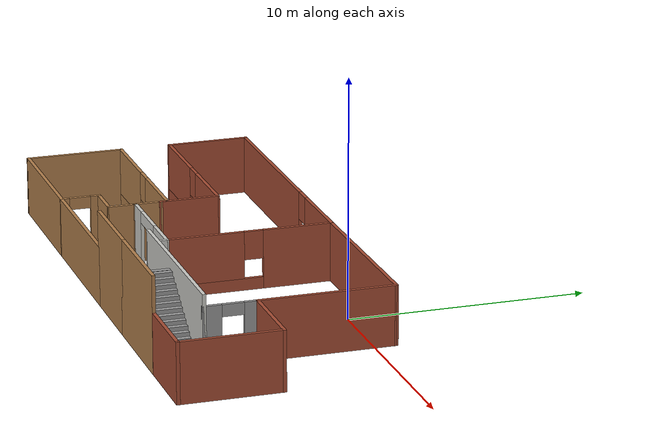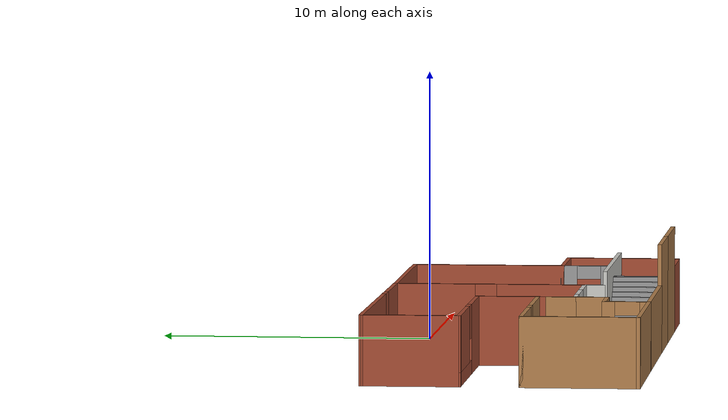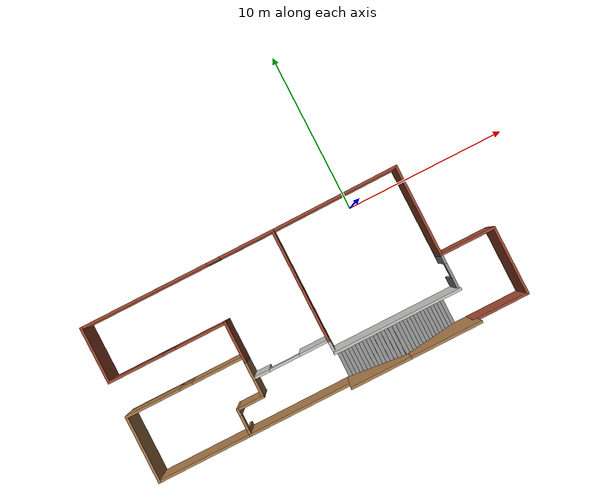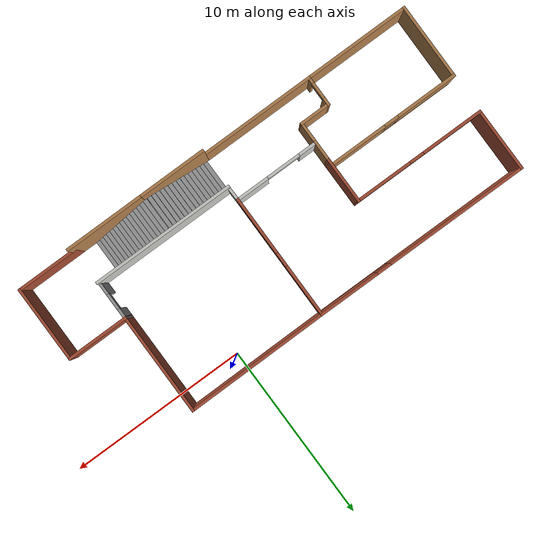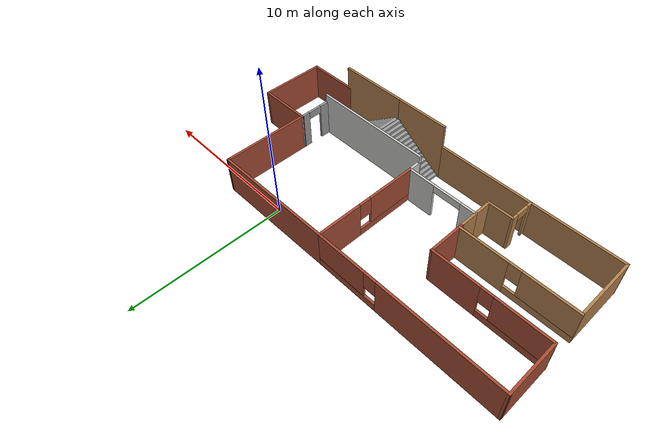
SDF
<?xml version='1.0'?>
<sdf version='1.7'>
  <model name='robot_house_space'>
    <pose>-5.05169 -4.00824 0 0 -0 0</pose>
    <link name='Stairs_1'>
      <visual name='Stairs_1_Visual_0'>
        <pose>0.620829 -3.92142 0.083333 0 -0 1.5708</pose>
        <geometry>
          <box>
            <size>1.97481 0.231333 0.166667</size>
          </box>
        </geometry>
        <material>
          <script>
            <uri>file://media/materials/scripts/gazebo.material</uri>
            <name>Gazebo/Grey</name>
          </script>
          <ambient>1 1 1 1</ambient>
        </material>
        <meta>
          <layer>0</layer>
        </meta>
      </visual>
      <collision name='Stairs_1_Collision_0'>
        <geometry>
          <box>
            <size>1.97481 0.231333 0.166667</size>
          </box>
        </geometry>
        <pose>0.620829 -3.92142 0.083333 0 -0 1.5708</pose>
      </collision>
      <visual name='Stairs_1_Visual_1'>
        <pose>0.852162 -3.92142 0.25 0 -0 1.5708</pose>
        <geometry>
          <box>
            <size>1.97481 0.231333 0.166667</size>
          </box>
        </geometry>
        <material>
          <script>
            <uri>file://media/materials/scripts/gazebo.material</uri>
            <name>Gazebo/Grey</name>
          </script>
          <ambient>1 1 1 1</ambient>
        </material>
        <meta>
          <layer>0</layer>
        </meta>
      </visual>
      <collision name='Stairs_1_Collision_1'>
        <geometry>
          <box>
            <size>1.97481 0.231333 0.166667</size>
          </box>
        </geometry>
        <pose>0.852162 -3.92142 0.25 0 -0 1.5708</pose>
      </collision>
      <visual name='Stairs_1_Visual_2'>
        <pose>1.0835 -3.92142 0.416667 0 -0 1.5708</pose>
        <geometry>
          <box>
            <size>1.97481 0.231333 0.166667</size>
          </box>
        </geometry>
        <material>
          <script>
            <uri>file://media/materials/scripts/gazebo.material</uri>
            <name>Gazebo/Grey</name>
          </script>
          <ambient>1 1 1 1</ambient>
        </material>
        <meta>
          <layer>0</layer>
        </meta>
      </visual>
      <collision name='Stairs_1_Collision_2'>
        <geometry>
          <box>
            <size>1.97481 0.231333 0.166667</size>
          </box>
        </geometry>
        <pose>1.0835 -3.92142 0.416667 0 -0 1.5708</pose>
      </collision>
      <visual name='Stairs_1_Visual_3'>
        <pose>1.31483 -3.92142 0.583333 0 -0 1.5708</pose>
        <geometry>
          <box>
            <size>1.97481 0.231333 0.166667</size>
          </box>
        </geometry>
        <material>
          <script>
            <uri>file://media/materials/scripts/gazebo.material</uri>
            <name>Gazebo/Grey</name>
          </script>
          <ambient>1 1 1 1</ambient>
        </material>
        <meta>
          <layer>0</layer>
        </meta>
      </visual>
      <collision name='Stairs_1_Collision_3'>
        <geometry>
          <box>
            <size>1.97481 0.231333 0.166667</size>
          </box>
        </geometry>
        <pose>1.31483 -3.92142 0.583333 0 -0 1.5708</pose>
      </collision>
      <visual name='Stairs_1_Visual_4'>
        <pose>1.54616 -3.92142 0.75 0 -0 1.5708</pose>
        <geometry>
          <box>
            <size>1.97481 0.231333 0.166667</size>
          </box>
        </geometry>
        <material>
          <script>
            <uri>file://media/materials/scripts/gazebo.material</uri>
            <name>Gazebo/Grey</name>
          </script>
          <ambient>1 1 1 1</ambient>
        </material>
        <meta>
          <layer>0</layer>
        </meta>
      </visual>
      <collision name='Stairs_1_Collision_4'>
        <geometry>
          <box>
            <size>1.97481 0.231333 0.166667</size>
          </box>
        </geometry>
        <pose>1.54616 -3.92142 0.75 0 -0 1.5708</pose>
      </collision>
      <visual name='Stairs_1_Visual_5'>
        <pose>1.7775 -3.92142 0.916667 0 -0 1.5708</pose>
        <geometry>
          <box>
            <size>1.97481 0.231333 0.166667</size>
          </box>
        </geometry>
        <material>
          <script>
            <uri>file://media/materials/scripts/gazebo.material</uri>
            <name>Gazebo/Grey</name>
          </script>
          <ambient>1 1 1 1</ambient>
        </material>
        <meta>
          <layer>0</layer>
        </meta>
      </visual>
      <collision name='Stairs_1_Collision_5'>
        <geometry>
          <box>
            <size>1.97481 0.231333 0.166667</size>
          </box>
        </geometry>
        <pose>1.7775 -3.92142 0.916667 0 -0 1.5708</pose>
      </collision>
      <visual name='Stairs_1_Visual_6'>
        <pose>2.00883 -3.92142 1.08333 0 -0 1.5708</pose>
        <geometry>
          <box>
            <size>1.97481 0.231333 0.166667</size>
          </box>
        </geometry>
        <material>
          <script>
            <uri>file://media/materials/scripts/gazebo.material</uri>
            <name>Gazebo/Grey</name>
          </script>
          <ambient>1 1 1 1</ambient>
        </material>
        <meta>
          <layer>0</layer>
        </meta>
      </visual>
      <collision name='Stairs_1_Collision_6'>
        <geometry>
          <box>
            <size>1.97481 0.231333 0.166667</size>
          </box>
        </geometry>
        <pose>2.00883 -3.92142 1.08333 0 -0 1.5708</pose>
      </collision>
      <visual name='Stairs_1_Visual_7'>
        <pose>2.24016 -3.92142 1.25 0 -0 1.5708</pose>
        <geometry>
          <box>
            <size>1.97481 0.231333 0.166667</size>
          </box>
        </geometry>
        <material>
          <script>
            <uri>file://media/materials/scripts/gazebo.material</uri>
            <name>Gazebo/Grey</name>
          </script>
          <ambient>1 1 1 1</ambient>
        </material>
        <meta>
          <layer>0</layer>
        </meta>
      </visual>
      <collision name='Stairs_1_Collision_7'>
        <geometry>
          <box>
            <size>1.97481 0.231333 0.166667</size>
          </box>
        </geometry>
        <pose>2.24016 -3.92142 1.25 0 -0 1.5708</pose>
      </collision>
      <visual name='Stairs_1_Visual_8'>
        <pose>2.4715 -3.92142 1.41667 0 -0 1.5708</pose>
        <geometry>
          <box>
            <size>1.97481 0.231333 0.166667</size>
          </box>
        </geometry>
        <material>
          <script>
            <uri>file://media/materials/scripts/gazebo.material</uri>
            <name>Gazebo/Grey</name>
          </script>
          <ambient>1 1 1 1</ambient>
        </material>
        <meta>
          <layer>0</layer>
        </meta>
      </visual>
      <collision name='Stairs_1_Collision_8'>
        <geometry>
          <box>
            <size>1.97481 0.231333 0.166667</size>
          </box>
        </geometry>
        <pose>2.4715 -3.92142 1.41667 0 -0 1.5708</pose>
      </collision>
      <visual name='Stairs_1_Visual_9'>
        <pose>2.70283 -3.92142 1.58333 0 -0 1.5708</pose>
        <geometry>
          <box>
            <size>1.97481 0.231333 0.166667</size>
          </box>
        </geometry>
        <material>
          <script>
            <uri>file://media/materials/scripts/gazebo.material</uri>
            <name>Gazebo/Grey</name>
          </script>
          <ambient>1 1 1 1</ambient>
        </material>
        <meta>
          <layer>0</layer>
        </meta>
      </visual>
      <collision name='Stairs_1_Collision_9'>
        <geometry>
          <box>
            <size>1.97481 0.231333 0.166667</size>
          </box>
        </geometry>
        <pose>2.70283 -3.92142 1.58333 0 -0 1.5708</pose>
      </collision>
      <visual name='Stairs_1_Visual_10'>
        <pose>2.93416 -3.92142 1.75 0 -0 1.5708</pose>
        <geometry>
          <box>
            <size>1.97481 0.231333 0.166667</size>
          </box>
        </geometry>
        <material>
          <script>
            <uri>file://media/materials/scripts/gazebo.material</uri>
            <name>Gazebo/Grey</name>
          </script>
          <ambient>1 1 1 1</ambient>
        </material>
        <meta>
          <layer>0</layer>
        </meta>
      </visual>
      <collision name='Stairs_1_Collision_10'>
        <geometry>
          <box>
            <size>1.97481 0.231333 0.166667</size>
          </box>
        </geometry>
        <pose>2.93416 -3.92142 1.75 0 -0 1.5708</pose>
      </collision>
      <visual name='Stairs_1_Visual_11'>
        <pose>3.1655 -3.92142 1.91667 0 -0 1.5708</pose>
        <geometry>
          <box>
            <size>1.97481 0.231333 0.166667</size>
          </box>
        </geometry>
        <material>
          <script>
            <uri>file://media/materials/scripts/gazebo.material</uri>
            <name>Gazebo/Grey</name>
          </script>
          <ambient>1 1 1 1</ambient>
        </material>
        <meta>
          <layer>0</layer>
        </meta>
      </visual>
      <collision name='Stairs_1_Collision_11'>
        <geometry>
          <box>
            <size>1.97481 0.231333 0.166667</size>
          </box>
        </geometry>
        <pose>3.1655 -3.92142 1.91667 0 -0 1.5708</pose>
      </collision>
      <visual name='Stairs_1_Visual_12'>
        <pose>3.39683 -3.92142 2.08333 0 -0 1.5708</pose>
        <geometry>
          <box>
            <size>1.97481 0.231333 0.166667</size>
          </box>
        </geometry>
        <material>
          <script>
            <uri>file://media/materials/scripts/gazebo.material</uri>
            <name>Gazebo/Grey</name>
          </script>
          <ambient>1 1 1 1</ambient>
        </material>
        <meta>
          <layer>0</layer>
        </meta>
      </visual>
      <collision name='Stairs_1_Collision_12'>
        <geometry>
          <box>
            <size>1.97481 0.231333 0.166667</size>
          </box>
        </geometry>
        <pose>3.39683 -3.92142 2.08333 0 -0 1.5708</pose>
      </collision>
      <visual name='Stairs_1_Visual_13'>
        <pose>3.62816 -3.92142 2.25 0 -0 1.5708</pose>
        <geometry>
          <box>
            <size>1.97481 0.231333 0.166667</size>
          </box>
        </geometry>
        <material>
          <script>
            <uri>file://media/materials/scripts/gazebo.material</uri>
            <name>Gazebo/Grey</name>
          </script>
          <ambient>1 1 1 1</ambient>
        </material>
        <meta>
          <layer>0</layer>
        </meta>
      </visual>
      <collision name='Stairs_1_Collision_13'>
        <geometry>
          <box>
            <size>1.97481 0.231333 0.166667</size>
          </box>
        </geometry>
        <pose>3.62816 -3.92142 2.25 0 -0 1.5708</pose>
      </collision>
      <visual name='Stairs_1_Visual_14'>
        <pose>3.8595 -3.92142 2.41667 0 -0 1.5708</pose>
        <geometry>
          <box>
            <size>1.97481 0.231333 0.166667</size>
          </box>
        </geometry>
        <material>
          <script>
            <uri>file://media/materials/scripts/gazebo.material</uri>
            <name>Gazebo/Grey</name>
          </script>
          <ambient>1 1 1 1</ambient>
        </material>
        <meta>
          <layer>0</layer>
        </meta>
      </visual>
      <collision name='Stairs_1_Collision_14'>
        <geometry>
          <box>
            <size>1.97481 0.231333 0.166667</size>
          </box>
        </geometry>
        <pose>3.8595 -3.92142 2.41667 0 -0 1.5708</pose>
      </collision>
    </link>
    <link name='Stairs_2'>
      <visual name='Stairs_2_Visual_0'>
        <pose>7.38463 -3.89067 0.083333 0 -0 -1.5708</pose>
        <geometry>
          <box>
            <size>1.8856 0.233333 0.166667</size>
          </box>
        </geometry>
        <material>
          <script>
            <uri>file://media/materials/scripts/gazebo.material</uri>
            <name>Gazebo/Grey</name>
          </script>
          <ambient>1 1 1 1</ambient>
        </material>
        <meta>
          <layer>0</layer>
        </meta>
      </visual>
      <collision name='Stairs_2_Collision_0'>
        <geometry>
          <box>
            <size>1.8856 0.233333 0.166667</size>
          </box>
        </geometry>
        <pose>7.38463 -3.89067 0.083333 0 -0 -1.5708</pose>
      </collision>
      <visual name='Stairs_2_Visual_1'>
        <pose>7.15129 -3.89067 0.25 0 -0 -1.5708</pose>
        <geometry>
          <box>
            <size>1.8856 0.233333 0.166667</size>
          </box>
        </geometry>
        <material>
          <script>
            <uri>file://media/materials/scripts/gazebo.material</uri>
            <name>Gazebo/Grey</name>
          </script>
          <ambient>1 1 1 1</ambient>
        </material>
        <meta>
          <layer>0</layer>
        </meta>
      </visual>
      <collision name='Stairs_2_Collision_1'>
        <geometry>
          <box>
            <size>1.8856 0.233333 0.166667</size>
          </box>
        </geometry>
        <pose>7.15129 -3.89067 0.25 0 -0 -1.5708</pose>
      </collision>
      <visual name='Stairs_2_Visual_2'>
        <pose>6.91796 -3.89067 0.416667 0 -0 -1.5708</pose>
        <geometry>
          <box>
            <size>1.8856 0.233333 0.166667</size>
          </box>
        </geometry>
        <material>
          <script>
            <uri>file://media/materials/scripts/gazebo.material</uri>
            <name>Gazebo/Grey</name>
          </script>
          <ambient>1 1 1 1</ambient>
        </material>
        <meta>
          <layer>0</layer>
        </meta>
      </visual>
      <collision name='Stairs_2_Collision_2'>
        <geometry>
          <box>
            <size>1.8856 0.233333 0.166667</size>
          </box>
        </geometry>
        <pose>6.91796 -3.89067 0.416667 0 -0 -1.5708</pose>
      </collision>
      <visual name='Stairs_2_Visual_3'>
        <pose>6.68463 -3.89067 0.583333 0 -0 -1.5708</pose>
        <geometry>
          <box>
            <size>1.8856 0.233333 0.166667</size>
          </box>
        </geometry>
        <material>
          <script>
            <uri>file://media/materials/scripts/gazebo.material</uri>
            <name>Gazebo/Grey</name>
          </script>
          <ambient>1 1 1 1</ambient>
        </material>
        <meta>
          <layer>0</layer>
        </meta>
      </visual>
      <collision name='Stairs_2_Collision_3'>
        <geometry>
          <box>
            <size>1.8856 0.233333 0.166667</size>
          </box>
        </geometry>
        <pose>6.68463 -3.89067 0.583333 0 -0 -1.5708</pose>
      </collision>
      <visual name='Stairs_2_Visual_4'>
        <pose>6.45129 -3.89067 0.75 0 -0 -1.5708</pose>
        <geometry>
          <box>
            <size>1.8856 0.233333 0.166667</size>
          </box>
        </geometry>
        <material>
          <script>
            <uri>file://media/materials/scripts/gazebo.material</uri>
            <name>Gazebo/Grey</name>
          </script>
          <ambient>1 1 1 1</ambient>
        </material>
        <meta>
          <layer>0</layer>
        </meta>
      </visual>
      <collision name='Stairs_2_Collision_4'>
        <geometry>
          <box>
            <size>1.8856 0.233333 0.166667</size>
          </box>
        </geometry>
        <pose>6.45129 -3.89067 0.75 0 -0 -1.5708</pose>
      </collision>
      <visual name='Stairs_2_Visual_5'>
        <pose>6.21796 -3.89067 0.916667 0 -0 -1.5708</pose>
        <geometry>
          <box>
            <size>1.8856 0.233333 0.166667</size>
          </box>
        </geometry>
        <material>
          <script>
            <uri>file://media/materials/scripts/gazebo.material</uri>
            <name>Gazebo/Grey</name>
          </script>
          <ambient>1 1 1 1</ambient>
        </material>
        <meta>
          <layer>0</layer>
        </meta>
      </visual>
      <collision name='Stairs_2_Collision_5'>
        <geometry>
          <box>
            <size>1.8856 0.233333 0.166667</size>
          </box>
        </geometry>
        <pose>6.21796 -3.89067 0.916667 0 -0 -1.5708</pose>
      </collision>
      <visual name='Stairs_2_Visual_6'>
        <pose>5.98463 -3.89067 1.08333 0 -0 -1.5708</pose>
        <geometry>
          <box>
            <size>1.8856 0.233333 0.166667</size>
          </box>
        </geometry>
        <material>
          <script>
            <uri>file://media/materials/scripts/gazebo.material</uri>
            <name>Gazebo/Grey</name>
          </script>
          <ambient>1 1 1 1</ambient>
        </material>
        <meta>
          <layer>0</layer>
        </meta>
      </visual>
      <collision name='Stairs_2_Collision_6'>
        <geometry>
          <box>
            <size>1.8856 0.233333 0.166667</size>
          </box>
        </geometry>
        <pose>5.98463 -3.89067 1.08333 0 -0 -1.5708</pose>
      </collision>
      <visual name='Stairs_2_Visual_7'>
        <pose>5.75129 -3.89067 1.25 0 -0 -1.5708</pose>
        <geometry>
          <box>
            <size>1.8856 0.233333 0.166667</size>
          </box>
        </geometry>
        <material>
          <script>
            <uri>file://media/materials/scripts/gazebo.material</uri>
            <name>Gazebo/Grey</name>
          </script>
          <ambient>1 1 1 1</ambient>
        </material>
        <meta>
          <layer>0</layer>
        </meta>
      </visual>
      <collision name='Stairs_2_Collision_7'>
        <geometry>
          <box>
            <size>1.8856 0.233333 0.166667</size>
          </box>
        </geometry>
        <pose>5.75129 -3.89067 1.25 0 -0 -1.5708</pose>
      </collision>
      <visual name='Stairs_2_Visual_8'>
        <pose>5.51796 -3.89067 1.41667 0 -0 -1.5708</pose>
        <geometry>
          <box>
            <size>1.8856 0.233333 0.166667</size>
          </box>
        </geometry>
        <material>
          <script>
            <uri>file://media/materials/scripts/gazebo.material</uri>
            <name>Gazebo/Grey</name>
          </script>
          <ambient>1 1 1 1</ambient>
        </material>
        <meta>
          <layer>0</layer>
        </meta>
      </visual>
      <collision name='Stairs_2_Collision_8'>
        <geometry>
          <box>
            <size>1.8856 0.233333 0.166667</size>
          </box>
        </geometry>
        <pose>5.51796 -3.89067 1.41667 0 -0 -1.5708</pose>
      </collision>
      <visual name='Stairs_2_Visual_9'>
        <pose>5.28463 -3.89067 1.58333 0 -0 -1.5708</pose>
        <geometry>
          <box>
            <size>1.8856 0.233333 0.166667</size>
          </box>
        </geometry>
        <material>
          <script>
            <uri>file://media/materials/scripts/gazebo.material</uri>
            <name>Gazebo/Grey</name>
          </script>
          <ambient>1 1 1 1</ambient>
        </material>
        <meta>
          <layer>0</layer>
        </meta>
      </visual>
      <collision name='Stairs_2_Collision_9'>
        <geometry>
          <box>
            <size>1.8856 0.233333 0.166667</size>
          </box>
        </geometry>
        <pose>5.28463 -3.89067 1.58333 0 -0 -1.5708</pose>
      </collision>
      <visual name='Stairs_2_Visual_10'>
        <pose>5.05129 -3.89067 1.75 0 -0 -1.5708</pose>
        <geometry>
          <box>
            <size>1.8856 0.233333 0.166667</size>
          </box>
        </geometry>
        <material>
          <script>
            <uri>file://media/materials/scripts/gazebo.material</uri>
            <name>Gazebo/Grey</name>
          </script>
          <ambient>1 1 1 1</ambient>
        </material>
        <meta>
          <layer>0</layer>
        </meta>
      </visual>
      <collision name='Stairs_2_Collision_10'>
        <geometry>
          <box>
            <size>1.8856 0.233333 0.166667</size>
          </box>
        </geometry>
        <pose>5.05129 -3.89067 1.75 0 -0 -1.5708</pose>
      </collision>
      <visual name='Stairs_2_Visual_11'>
        <pose>4.81796 -3.89067 1.91667 0 -0 -1.5708</pose>
        <geometry>
          <box>
            <size>1.8856 0.233333 0.166667</size>
          </box>
        </geometry>
        <material>
          <script>
            <uri>file://media/materials/scripts/gazebo.material</uri>
            <name>Gazebo/Grey</name>
          </script>
          <ambient>1 1 1 1</ambient>
        </material>
        <meta>
          <layer>0</layer>
        </meta>
      </visual>
      <collision name='Stairs_2_Collision_11'>
        <geometry>
          <box>
            <size>1.8856 0.233333 0.166667</size>
          </box>
        </geometry>
        <pose>4.81796 -3.89067 1.91667 0 -0 -1.5708</pose>
      </collision>
      <visual name='Stairs_2_Visual_12'>
        <pose>4.58463 -3.89067 2.08333 0 -0 -1.5708</pose>
        <geometry>
          <box>
            <size>1.8856 0.233333 0.166667</size>
          </box>
        </geometry>
        <material>
          <script>
            <uri>file://media/materials/scripts/gazebo.material</uri>
            <name>Gazebo/Grey</name>
          </script>
          <ambient>1 1 1 1</ambient>
        </material>
        <meta>
          <layer>0</layer>
        </meta>
      </visual>
      <collision name='Stairs_2_Collision_12'>
        <geometry>
          <box>
            <size>1.8856 0.233333 0.166667</size>
          </box>
        </geometry>
        <pose>4.58463 -3.89067 2.08333 0 -0 -1.5708</pose>
      </collision>
      <visual name='Stairs_2_Visual_13'>
        <pose>4.35129 -3.89067 2.25 0 -0 -1.5708</pose>
        <geometry>
          <box>
            <size>1.8856 0.233333 0.166667</size>
          </box>
        </geometry>
        <material>
          <script>
            <uri>file://media/materials/scripts/gazebo.material</uri>
            <name>Gazebo/Grey</name>
          </script>
          <ambient>1 1 1 1</ambient>
        </material>
        <meta>
          <layer>0</layer>
        </meta>
      </visual>
      <collision name='Stairs_2_Collision_13'>
        <geometry>
          <box>
            <size>1.8856 0.233333 0.166667</size>
          </box>
        </geometry>
        <pose>4.35129 -3.89067 2.25 0 -0 -1.5708</pose>
      </collision>
      <visual name='Stairs_2_Visual_14'>
        <pose>4.11796 -3.89067 2.41667 0 -0 -1.5708</pose>
        <geometry>
          <box>
            <size>1.8856 0.233333 0.166667</size>
          </box>
        </geometry>
        <material>
          <script>
            <uri>file://media/materials/scripts/gazebo.material</uri>
            <name>Gazebo/Grey</name>
          </script>
          <ambient>1 1 1 1</ambient>
        </material>
        <meta>
          <layer>0</layer>
        </meta>
      </visual>
      <collision name='Stairs_2_Collision_14'>
        <geometry>
          <box>
            <size>1.8856 0.233333 0.166667</size>
          </box>
        </geometry>
        <pose>4.11796 -3.89067 2.41667 0 -0 -1.5708</pose>
      </collision>
    </link>
    <link name='Wall_31'>
      <collision name='Wall_31_Collision'>
        <geometry>
          <box>
            <size>2.61436 0.15 2.5</size>
          </box>
        </geometry>
        <pose>0 0 1.25 0 -0 0</pose>
      </collision>
      <visual name='Wall_31_Visual'>
        <pose>0 0 1.25 0 -0 0</pose>
        <geometry>
          <box>
            <size>2.61436 0.15 2.5</size>
          </box>
        </geometry>
        <material>
          <script>
            <uri>file://media/materials/scripts/gazebo.material</uri>
            <name>Gazebo/Bricks</name>
          </script>
          <ambient>1 1 1 1</ambient>
        </material>
        <meta>
          <layer>0</layer>
        </meta>
      </visual>
      <pose>-4.28923 0.164965 0 0 -0 1.57401</pose>
    </link>
    <link name='Wall_32'>
      <pose>-7.96819 1.397 0 0 -0 3.14159</pose>
      <visual name='Wall_32_Visual_0'>
        <pose>-2.14641 0 1.25 0 -0 0</pose>
        <geometry>
          <box>
            <size>3.20718 0.15 2.5</size>
          </box>
        </geometry>
        <material>
          <script>
            <uri>file://media/materials/scripts/gazebo.material</uri>
            <name>Gazebo/Bricks</name>
          </script>
          <ambient>1 1 1 1</ambient>
        </material>
        <meta>
          <layer>0</layer>
        </meta>
      </visual>
      <collision name='Wall_32_Collision_0'>
        <geometry>
          <box>
            <size>3.20718 0.15 2.5</size>
          </box>
        </geometry>
        <pose>-2.14641 0 1.25 0 -0 0</pose>
      </collision>
      <visual name='Wall_32_Visual_1'>
        <pose>1.60359 0 0.25 0 -0 0</pose>
        <geometry>
          <box>
            <size>4.29282 0.15 0.5</size>
          </box>
        </geometry>
        <material>
          <script>
            <uri>file://media/materials/scripts/gazebo.material</uri>
            <name>Gazebo/Bricks</name>
          </script>
          <ambient>1 1 1 1</ambient>
        </material>
        <meta>
          <layer>0</layer>
        </meta>
      </visual>
      <collision name='Wall_32_Collision_1'>
        <geometry>
          <box>
            <size>4.29282 0.15 0.5</size>
          </box>
        </geometry>
        <pose>1.60359 0 0.25 0 -0 0</pose>
      </collision>
      <visual name='Wall_32_Visual_2'>
        <pose>2.00359 0 1.5 0 -0 0</pose>
        <geometry>
          <box>
            <size>3.49282 0.15 2</size>
          </box>
        </geometry>
        <material>
          <script>
            <uri>file://media/materials/scripts/gazebo.material</uri>
            <name>Gazebo/Bricks</name>
          </script>
          <ambient>1 1 1 1</ambient>
        </material>
        <meta>
          <layer>0</layer>
        </meta>
      </visual>
      <collision name='Wall_32_Collision_2'>
        <geometry>
          <box>
            <size>3.49282 0.15 2</size>
          </box>
        </geometry>
        <pose>2.00359 0 1.5 0 -0 0</pose>
      </collision>
      <visual name='Wall_32_Visual_3'>
        <pose>-0.142822 0 1.9 0 -0 0</pose>
        <geometry>
          <box>
            <size>0.8 0.15 1.2</size>
          </box>
        </geometry>
        <material>
          <script>
            <uri>file://media/materials/scripts/gazebo.material</uri>
            <name>Gazebo/Bricks</name>
          </script>
          <ambient>1 1 1 1</ambient>
        </material>
        <meta>
          <layer>0</layer>
        </meta>
      </visual>
      <collision name='Wall_32_Collision_3'>
        <geometry>
          <box>
            <size>0.8 0.15 1.2</size>
          </box>
        </geometry>
        <pose>-0.142822 0 1.9 0 -0 0</pose>
      </collision>
    </link>
    <link name='Wall_33'>
      <collision name='Wall_33_Collision'>
        <geometry>
          <box>
            <size>3.58039 0.15 2.5</size>
          </box>
        </geometry>
        <pose>0 0 1.25 0 -0 0</pose>
      </collision>
      <visual name='Wall_33_Visual'>
        <pose>0 0 1.25 0 -0 0</pose>
        <geometry>
          <box>
            <size>3.58039 0.15 2.5</size>
          </box>
        </geometry>
        <material>
          <script>
            <uri>file://media/materials/scripts/gazebo.material</uri>
            <name>Gazebo/Bricks</name>
          </script>
          <ambient>1 1 1 1</ambient>
        </material>
        <meta>
          <layer>0</layer>
        </meta>
      </visual>
      <pose>-11.6508 3.11192 0 0 -0 1.57523</pose>
    </link>
    <link name='Wall_34'>
      <pose>-5.6084 4.82685 0 0 -0 0</pose>
      <visual name='Wall_34_Visual_0'>
        <pose>-2.11826 0 1.25 0 -0 0</pose>
        <geometry>
          <box>
            <size>8.01347 0.15 2.5</size>
          </box>
        </geometry>
        <material>
          <script>
            <uri>file://media/materials/scripts/gazebo.material</uri>
            <name>Gazebo/Bricks</name>
          </script>
          <ambient>1 1 1 1</ambient>
        </material>
        <meta>
          <layer>0</layer>
        </meta>
      </visual>
      <collision name='Wall_34_Collision_0'>
        <geometry>
          <box>
            <size>8.01347 0.15 2.5</size>
          </box>
        </geometry>
        <pose>-2.11826 0 1.25 0 -0 0</pose>
      </collision>
      <visual name='Wall_34_Visual_1'>
        <pose>4.00674 0 0.25 0 -0 0</pose>
        <geometry>
          <box>
            <size>4.23653 0.15 0.5</size>
          </box>
        </geometry>
        <material>
          <script>
            <uri>file://media/materials/scripts/gazebo.material</uri>
            <name>Gazebo/Bricks</name>
          </script>
          <ambient>1 1 1 1</ambient>
        </material>
        <meta>
          <layer>0</layer>
        </meta>
      </visual>
      <collision name='Wall_34_Collision_1'>
        <geometry>
          <box>
            <size>4.23653 0.15 0.5</size>
          </box>
        </geometry>
        <pose>4.00674 0 0.25 0 -0 0</pose>
      </collision>
      <visual name='Wall_34_Visual_2'>
        <pose>4.40674 0 1.5 0 -0 0</pose>
        <geometry>
          <box>
            <size>3.43653 0.15 2</size>
          </box>
        </geometry>
        <material>
          <script>
            <uri>file://media/materials/scripts/gazebo.material</uri>
            <name>Gazebo/Bricks</name>
          </script>
          <ambient>1 1 1 1</ambient>
        </material>
        <meta>
          <layer>0</layer>
        </meta>
      </visual>
      <collision name='Wall_34_Collision_2'>
        <geometry>
          <box>
            <size>3.43653 0.15 2</size>
          </box>
        </geometry>
        <pose>4.40674 0 1.5 0 -0 0</pose>
      </collision>
      <visual name='Wall_34_Visual_3'>
        <pose>2.28847 0 1.9 0 -0 0</pose>
        <geometry>
          <box>
            <size>0.8 0.15 1.2</size>
          </box>
        </geometry>
        <material>
          <script>
            <uri>file://media/materials/scripts/gazebo.material</uri>
            <name>Gazebo/Bricks</name>
          </script>
          <ambient>1 1 1 1</ambient>
        </material>
        <meta>
          <layer>0</layer>
        </meta>
      </visual>
      <collision name='Wall_34_Collision_3'>
        <geometry>
          <box>
            <size>0.8 0.15 1.2</size>
          </box>
        </geometry>
        <pose>2.28847 0 1.9 0 -0 0</pose>
      </collision>
    </link>
    <link name='Wall_35'>
      <pose>0.441602 1.35115 0 0 -0 -1.5708</pose>
      <visual name='Wall_35_Visual_0'>
        <pose>-2.0495 0 1.25 0 -0 0</pose>
        <geometry>
          <box>
            <size>3.00239 0.15 2.5</size>
          </box>
        </geometry>
        <material>
          <script>
            <uri>file://media/materials/scripts/gazebo.material</uri>
            <name>Gazebo/Bricks</name>
          </script>
          <ambient>0.760784 0.662745 0.627451 1</ambient>
        </material>
        <meta>
          <layer>0</layer>
        </meta>
      </visual>
      <collision name='Wall_35_Collision_0'>
        <geometry>
          <box>
            <size>3.00239 0.15 2.5</size>
          </box>
        </geometry>
        <pose>-2.0495 0 1.25 0 -0 0</pose>
      </collision>
      <visual name='Wall_35_Visual_1'>
        <pose>1.50119 0 0.25 0 -0 0</pose>
        <geometry>
          <box>
            <size>4.09901 0.15 0.5</size>
          </box>
        </geometry>
        <material>
          <script>
            <uri>file://media/materials/scripts/gazebo.material</uri>
            <name>Gazebo/Bricks</name>
          </script>
          <ambient>0.760784 0.662745 0.627451 1</ambient>
        </material>
        <meta>
          <layer>0</layer>
        </meta>
      </visual>
      <collision name='Wall_35_Collision_1'>
        <geometry>
          <box>
            <size>4.09901 0.15 0.5</size>
          </box>
        </geometry>
        <pose>1.50119 0 0.25 0 -0 0</pose>
      </collision>
      <visual name='Wall_35_Visual_2'>
        <pose>1.90119 0 1.5 0 -0 0</pose>
        <geometry>
          <box>
            <size>3.29901 0.15 2</size>
          </box>
        </geometry>
        <material>
          <script>
            <uri>file://media/materials/scripts/gazebo.material</uri>
            <name>Gazebo/Bricks</name>
          </script>
          <ambient>0.760784 0.662745 0.627451 1</ambient>
        </material>
        <meta>
          <layer>0</layer>
        </meta>
      </visual>
      <collision name='Wall_35_Collision_2'>
        <geometry>
          <box>
            <size>3.29901 0.15 2</size>
          </box>
        </geometry>
        <pose>1.90119 0 1.5 0 -0 0</pose>
      </collision>
      <visual name='Wall_35_Visual_3'>
        <pose>-0.148309 0 1.9 0 -0 0</pose>
        <geometry>
          <box>
            <size>0.8 0.15 1.2</size>
          </box>
        </geometry>
        <material>
          <script>
            <uri>file://media/materials/scripts/gazebo.material</uri>
            <name>Gazebo/Bricks</name>
          </script>
          <ambient>0.760784 0.662745 0.627451 1</ambient>
        </material>
        <meta>
          <layer>0</layer>
        </meta>
      </visual>
      <collision name='Wall_35_Collision_3'>
        <geometry>
          <box>
            <size>0.8 0.15 1.2</size>
          </box>
        </geometry>
        <pose>-0.148309 0 1.9 0 -0 0</pose>
      </collision>
    </link>
    <link name='Wall_39'>
      <collision name='Wall_39_Collision'>
        <geometry>
          <box>
            <size>1.25 0.15 2.5</size>
          </box>
        </geometry>
        <pose>0 0 1.25 0 -0 0</pose>
      </collision>
      <visual name='Wall_39_Visual'>
        <pose>0 0 1.25 0 -0 0</pose>
        <geometry>
          <box>
            <size>1.25 0.15 2.5</size>
          </box>
        </geometry>
        <material>
          <script>
            <uri>file://media/materials/scripts/gazebo.material</uri>
            <name>Gazebo/Wood</name>
          </script>
          <ambient>1 1 1 1</ambient>
        </material>
        <meta>
          <layer>0</layer>
        </meta>
      </visual>
      <pose>-4.28527 -1.61707 0 0 -0 -1.5708</pose>
    </link>
    <link name='Wall_41'>
      <pose>-1.8584 -2.12455 0 0 -0 3.14159</pose>
      <visual name='Wall_41_Visual_0'>
        <pose>-1.42904 0 1.25 0 -0 0</pose>
        <geometry>
          <box>
            <size>1.89192 0.15 2.5</size>
          </box>
        </geometry>
        <material>
          <script>
            <uri>file://media/materials/scripts/gazebo.material</uri>
            <name>Gazebo/CeilingTiled</name>
          </script>
          <ambient>1 1 1 1</ambient>
        </material>
        <meta>
          <layer>0</layer>
        </meta>
      </visual>
      <collision name='Wall_41_Collision_0'>
        <geometry>
          <box>
            <size>1.89192 0.15 2.5</size>
          </box>
        </geometry>
        <pose>-1.42904 0 1.25 0 -0 0</pose>
      </collision>
      <visual name='Wall_41_Visual_1'>
        <pose>1.89596 0 1.25 0 -0 0</pose>
        <geometry>
          <box>
            <size>0.958083 0.15 2.5</size>
          </box>
        </geometry>
        <material>
          <script>
            <uri>file://media/materials/scripts/gazebo.material</uri>
            <name>Gazebo/CeilingTiled</name>
          </script>
          <ambient>1 1 1 1</ambient>
        </material>
        <meta>
          <layer>0</layer>
        </meta>
      </visual>
      <collision name='Wall_41_Collision_1'>
        <geometry>
          <box>
            <size>0.958083 0.15 2.5</size>
          </box>
        </geometry>
        <pose>1.89596 0 1.25 0 -0 0</pose>
      </collision>
      <visual name='Wall_41_Visual_2'>
        <pose>0.466917 0 2.25 0 -0 0</pose>
        <geometry>
          <box>
            <size>1.9 0.15 0.5</size>
          </box>
        </geometry>
        <material>
          <script>
            <uri>file://media/materials/scripts/gazebo.material</uri>
            <name>Gazebo/CeilingTiled</name>
          </script>
          <ambient>1 1 1 1</ambient>
        </material>
        <meta>
          <layer>0</layer>
        </meta>
      </visual>
      <collision name='Wall_41_Collision_2'>
        <geometry>
          <box>
            <size>1.9 0.15 0.5</size>
          </box>
        </geometry>
        <pose>0.466917 0 2.25 0 -0 0</pose>
      </collision>
    </link>
    <link name='Wall_45'>
      <collision name='Wall_45_Collision'>
        <geometry>
          <box>
            <size>6.5 0.15 2.5</size>
          </box>
        </geometry>
        <pose>0 0 1.25 0 -0 0</pose>
      </collision>
      <visual name='Wall_45_Visual'>
        <pose>0 0 1.25 0 -0 0</pose>
        <geometry>
          <box>
            <size>6.5 0.15 2.5</size>
          </box>
        </geometry>
        <material>
          <script>
            <uri>file://media/materials/scripts/gazebo.material</uri>
            <name>Gazebo/Wood</name>
          </script>
          <ambient>1 0.764706 0.305882 1</ambient>
        </material>
        <meta>
          <layer>0</layer>
        </meta>
      </visual>
      <pose>-2.71107 -4.8807 0 0 -0 3.14157</pose>
    </link>
    <link name='Wall_46'>
      <pose>-5.88582 -4.08064 0 0 -0 1.5708</pose>
      <visual name='Wall_46_Visual_0'>
        <pose>-0.676797 0 1.25 0 -0 0</pose>
        <geometry>
          <box>
            <size>0.396406 0.15 2.5</size>
          </box>
        </geometry>
        <material>
          <script>
            <uri>file://media/materials/scripts/gazebo.material</uri>
            <name>Gazebo/Wood</name>
          </script>
          <ambient>1 1 1 1</ambient>
        </material>
        <meta>
          <layer>0</layer>
        </meta>
      </visual>
      <collision name='Wall_46_Collision_0'>
        <geometry>
          <box>
            <size>0.396406 0.15 2.5</size>
          </box>
        </geometry>
        <pose>-0.676797 0 1.25 0 -0 0</pose>
      </collision>
      <visual name='Wall_46_Visual_1'>
        <pose>0.648203 0 1.25 0 -0 0</pose>
        <geometry>
          <box>
            <size>0.453594 0.15 2.5</size>
          </box>
        </geometry>
        <material>
          <script>
            <uri>file://media/materials/scripts/gazebo.material</uri>
            <name>Gazebo/Wood</name>
          </script>
          <ambient>1 1 1 1</ambient>
        </material>
        <meta>
          <layer>0</layer>
        </meta>
      </visual>
      <collision name='Wall_46_Collision_1'>
        <geometry>
          <box>
            <size>0.453594 0.15 2.5</size>
          </box>
        </geometry>
        <pose>0.648203 0 1.25 0 -0 0</pose>
      </collision>
      <visual name='Wall_46_Visual_2'>
        <pose>-0.028594 0 2.25 0 -0 0</pose>
        <geometry>
          <box>
            <size>0.9 0.15 0.5</size>
          </box>
        </geometry>
        <material>
          <script>
            <uri>file://media/materials/scripts/gazebo.material</uri>
            <name>Gazebo/Wood</name>
          </script>
          <ambient>1 1 1 1</ambient>
        </material>
        <meta>
          <layer>0</layer>
        </meta>
      </visual>
      <collision name='Wall_46_Collision_2'>
        <geometry>
          <box>
            <size>0.9 0.15 0.5</size>
          </box>
        </geometry>
        <pose>-0.028594 0 2.25 0 -0 0</pose>
      </collision>
    </link>
    <link name='Wall_47'>
      <collision name='Wall_47_Collision'>
        <geometry>
          <box>
            <size>1.75 0.15 2.5</size>
          </box>
        </geometry>
        <pose>0 0 1.25 0 -0 0</pose>
      </collision>
      <visual name='Wall_47_Visual'>
        <pose>0 0 1.25 0 -0 0</pose>
        <geometry>
          <box>
            <size>1.75 0.15 2.5</size>
          </box>
        </geometry>
        <material>
          <script>
            <uri>file://media/materials/scripts/gazebo.material</uri>
            <name>Gazebo/Wood</name>
          </script>
          <ambient>1 1 1 1</ambient>
        </material>
        <meta>
          <layer>0</layer>
        </meta>
      </visual>
      <pose>-5.08582 -3.28064 0 0 -0 0</pose>
    </link>
    <link name='Wall_48'>
      <collision name='Wall_48_Collision'>
        <geometry>
          <box>
            <size>1.26357 0.15 2.5</size>
          </box>
        </geometry>
        <pose>0 0 1.25 0 -0 0</pose>
      </collision>
      <visual name='Wall_48_Visual'>
        <pose>0 0 1.25 0 -0 0</pose>
        <geometry>
          <box>
            <size>1.26357 0.15 2.5</size>
          </box>
        </geometry>
        <material>
          <script>
            <uri>file://media/materials/scripts/gazebo.material</uri>
            <name>Gazebo/Wood</name>
          </script>
          <ambient>1 1 1 1</ambient>
        </material>
        <meta>
          <layer>0</layer>
        </meta>
      </visual>
      <pose>-4.28554 -2.72385 0 0 -0 1.5703</pose>
    </link>
    <link name='Wall_50'>
      <pose>-7.9864 -0.781344 0 0 -0 3.14159</pose>
      <visual name='Wall_50_Visual_0'>
        <pose>-2.12429 0 1.25 0 -0 0</pose>
        <geometry>
          <box>
            <size>3.25142 0.15 2.5</size>
          </box>
        </geometry>
        <material>
          <script>
            <uri>file://media/materials/scripts/gazebo.material</uri>
            <name>Gazebo/Wood</name>
          </script>
          <ambient>1 1 1 1</ambient>
        </material>
        <meta>
          <layer>0</layer>
        </meta>
      </visual>
      <collision name='Wall_50_Collision_0'>
        <geometry>
          <box>
            <size>3.25142 0.15 2.5</size>
          </box>
        </geometry>
        <pose>-2.12429 0 1.25 0 -0 0</pose>
      </collision>
      <visual name='Wall_50_Visual_1'>
        <pose>1.62571 0 0.25 0 -0 0</pose>
        <geometry>
          <box>
            <size>4.24858 0.15 0.5</size>
          </box>
        </geometry>
        <material>
          <script>
            <uri>file://media/materials/scripts/gazebo.material</uri>
            <name>Gazebo/Wood</name>
          </script>
          <ambient>1 1 1 1</ambient>
        </material>
        <meta>
          <layer>0</layer>
        </meta>
      </visual>
      <collision name='Wall_50_Collision_1'>
        <geometry>
          <box>
            <size>4.24858 0.15 0.5</size>
          </box>
        </geometry>
        <pose>1.62571 0 0.25 0 -0 0</pose>
      </collision>
      <visual name='Wall_50_Visual_2'>
        <pose>2.02571 0 1.5 0 -0 0</pose>
        <geometry>
          <box>
            <size>3.44858 0.15 2</size>
          </box>
        </geometry>
        <material>
          <script>
            <uri>file://media/materials/scripts/gazebo.material</uri>
            <name>Gazebo/Wood</name>
          </script>
          <ambient>1 1 1 1</ambient>
        </material>
        <meta>
          <layer>0</layer>
        </meta>
      </visual>
      <collision name='Wall_50_Collision_2'>
        <geometry>
          <box>
            <size>3.44858 0.15 2</size>
          </box>
        </geometry>
        <pose>2.02571 0 1.5 0 -0 0</pose>
      </collision>
      <visual name='Wall_50_Visual_3'>
        <pose>-0.098582 0 1.9 0 -0 0</pose>
        <geometry>
          <box>
            <size>0.8 0.15 1.2</size>
          </box>
        </geometry>
        <material>
          <script>
            <uri>file://media/materials/scripts/gazebo.material</uri>
            <name>Gazebo/Wood</name>
          </script>
          <ambient>1 1 1 1</ambient>
        </material>
        <meta>
          <layer>0</layer>
        </meta>
      </visual>
      <collision name='Wall_50_Collision_3'>
        <geometry>
          <box>
            <size>0.8 0.15 1.2</size>
          </box>
        </geometry>
        <pose>-0.098582 0 1.9 0 -0 0</pose>
      </collision>
    </link>
    <link name='Wall_51'>
      <collision name='Wall_51_Collision'>
        <geometry>
          <box>
            <size>4.25 0.15 2.5</size>
          </box>
        </geometry>
        <pose>0 0 1.25 0 -0 0</pose>
      </collision>
      <visual name='Wall_51_Visual'>
        <pose>0 0 1.25 0 -0 0</pose>
        <geometry>
          <box>
            <size>4.25 0.15 2.5</size>
          </box>
        </geometry>
        <material>
          <script>
            <uri>file://media/materials/scripts/gazebo.material</uri>
            <name>Gazebo/Wood</name>
          </script>
          <ambient>1 1 1 1</ambient>
        </material>
        <meta>
          <layer>0</layer>
        </meta>
      </visual>
      <pose>-11.6614 -2.83134 0 0 -0 -1.5708</pose>
    </link>
    <link name='Wall_52'>
      <collision name='Wall_52_Collision'>
        <geometry>
          <box>
            <size>5.92561 0.15 2.5</size>
          </box>
        </geometry>
        <pose>0 0 1.25 0 -0 0</pose>
      </collision>
      <visual name='Wall_52_Visual'>
        <pose>0 0 1.25 0 -0 0</pose>
        <geometry>
          <box>
            <size>5.92561 0.15 2.5</size>
          </box>
        </geometry>
        <material>
          <script>
            <uri>file://media/materials/scripts/gazebo.material</uri>
            <name>Gazebo/Wood</name>
          </script>
          <ambient>1 0.764706 0.305882 1</ambient>
        </material>
        <meta>
          <layer>0</layer>
        </meta>
      </visual>
      <pose>-8.77361 -4.88099 0 0 -0 0.000122</pose>
    </link>
    <link name='Wall_55'>
      <collision name='Wall_55_Collision'>
        <geometry>
          <box>
            <size>3.72131 0.15 4</size>
          </box>
        </geometry>
        <pose>0 0 2 0 -0 0</pose>
      </collision>
      <visual name='Wall_55_Visual'>
        <pose>0 0 2 0 -0 0</pose>
        <geometry>
          <box>
            <size>3.72131 0.15 4</size>
          </box>
        </geometry>
        <material>
          <script>
            <uri>file://media/materials/scripts/gazebo.material</uri>
            <name>Gazebo/Wood</name>
          </script>
          <ambient>1 1 1 1</ambient>
        </material>
        <meta>
          <layer>0</layer>
        </meta>
      </visual>
      <pose>2.24969 -4.88076 0 0 -0 0</pose>
    </link>
    <link name='Wall_56'>
      <collision name='Wall_56_Collision'>
        <geometry>
          <box>
            <size>4.5 0.15 4</size>
          </box>
        </geometry>
        <pose>0 0 2 0 -0 0</pose>
      </collision>
      <visual name='Wall_56_Visual'>
        <pose>0 0 2 0 -0 0</pose>
        <geometry>
          <box>
            <size>4.5 0.15 4</size>
          </box>
        </geometry>
        <material>
          <script>
            <uri>file://media/materials/scripts/gazebo.material</uri>
            <name>Gazebo/Wood</name>
          </script>
          <ambient>1 1 1 1</ambient>
        </material>
        <meta>
          <layer>0</layer>
        </meta>
      </visual>
      <pose>6.21069 -4.88076 0 0 -0 0</pose>
    </link>
    <link name='Wall_59'>
      <collision name='Wall_59_Collision'>
        <geometry>
          <box>
            <size>8 0.15 3</size>
          </box>
        </geometry>
        <pose>0 0 1.5 0 -0 0</pose>
      </collision>
      <visual name='Wall_59_Visual'>
        <pose>0 0 1.5 0 -0 0</pose>
        <geometry>
          <box>
            <size>8 0.15 3</size>
          </box>
        </geometry>
        <material>
          <script>
            <uri>file://media/materials/scripts/gazebo.material</uri>
            <name>Gazebo/CeilingTiled</name>
          </script>
          <ambient>1 1 1 1</ambient>
        </material>
        <meta>
          <layer>0</layer>
        </meta>
      </visual>
      <pose>4.38669 -2.87716 0 0 -0 0</pose>
    </link>
    <link name='Wall_61'>
      <collision name='Wall_61_Collision'>
        <geometry>
          <box>
            <size>0.90288 0.15 2.5</size>
          </box>
        </geometry>
        <pose>0 0 1.25 0 -0 0</pose>
      </collision>
      <visual name='Wall_61_Visual'>
        <pose>0 0 1.25 0 -0 0</pose>
        <geometry>
          <box>
            <size>0.90288 0.15 2.5</size>
          </box>
        </geometry>
        <material>
          <script>
            <uri>file://media/materials/scripts/gazebo.material</uri>
            <name>Gazebo/CeilingTiled</name>
          </script>
          <ambient>1 1 1 1</ambient>
        </material>
        <meta>
          <layer>0</layer>
        </meta>
      </visual>
      <pose>0.451646 -2.50085 0 0 -0 -1.54411</pose>
    </link>
    <link name='Wall_63'>
      <pose>8.31156 -1.79816 0 0 -0 1.57092</pose>
      <visual name='Wall_63_Visual_0'>
        <pose>-0.764558 0 1.25 0 -0 0</pose>
        <geometry>
          <box>
            <size>0.778882 0.15 2.5</size>
          </box>
        </geometry>
        <material>
          <script>
            <uri>file://media/materials/scripts/gazebo.material</uri>
            <name>Gazebo/Grey</name>
          </script>
          <ambient>1 1 1 1</ambient>
        </material>
        <meta>
          <layer>0</layer>
        </meta>
      </visual>
      <collision name='Wall_63_Collision_0'>
        <geometry>
          <box>
            <size>0.778882 0.15 2.5</size>
          </box>
        </geometry>
        <pose>-0.764558 0 1.25 0 -0 0</pose>
      </collision>
      <visual name='Wall_63_Visual_1'>
        <pose>0.839441 0 1.25 0 -0 0</pose>
        <geometry>
          <box>
            <size>0.629117 0.15 2.5</size>
          </box>
        </geometry>
        <material>
          <script>
            <uri>file://media/materials/scripts/gazebo.material</uri>
            <name>Gazebo/Grey</name>
          </script>
          <ambient>1 1 1 1</ambient>
        </material>
        <meta>
          <layer>0</layer>
        </meta>
      </visual>
      <collision name='Wall_63_Collision_1'>
        <geometry>
          <box>
            <size>0.629117 0.15 2.5</size>
          </box>
        </geometry>
        <pose>0.839441 0 1.25 0 -0 0</pose>
      </collision>
      <visual name='Wall_63_Visual_2'>
        <pose>0.074883 0 2.25 0 -0 0</pose>
        <geometry>
          <box>
            <size>0.9 0.15 0.5</size>
          </box>
        </geometry>
        <material>
          <script>
            <uri>file://media/materials/scripts/gazebo.material</uri>
            <name>Gazebo/Grey</name>
          </script>
          <ambient>1 1 1 1</ambient>
        </material>
        <meta>
          <layer>0</layer>
        </meta>
      </visual>
      <collision name='Wall_63_Collision_2'>
        <geometry>
          <box>
            <size>0.9 0.15 0.5</size>
          </box>
        </geometry>
        <pose>0.074883 0 2.25 0 -0 0</pose>
      </collision>
    </link>
    <link name='Wall_64'>
      <collision name='Wall_64_Collision'>
        <geometry>
          <box>
            <size>3.5 0.15 2.5</size>
          </box>
        </geometry>
        <pose>0 0 1.25 0 -0 0</pose>
      </collision>
      <visual name='Wall_64_Visual'>
        <pose>0 0 1.25 0 -0 0</pose>
        <geometry>
          <box>
            <size>3.5 0.15 2.5</size>
          </box>
        </geometry>
        <material>
          <script>
            <uri>file://media/materials/scripts/gazebo.material</uri>
            <name>Gazebo/Bricks</name>
          </script>
          <ambient>1 1 1 1</ambient>
        </material>
        <meta>
          <layer>0</layer>
        </meta>
      </visual>
      <pose>9.98643 -0.719159 0 0 -0 0</pose>
    </link>
    <link name='Wall_65'>
      <collision name='Wall_65_Collision'>
        <geometry>
          <box>
            <size>4.30761 0.15 2.5</size>
          </box>
        </geometry>
        <pose>0 0 1.25 0 -0 0</pose>
      </collision>
      <visual name='Wall_65_Visual'>
        <pose>0 0 1.25 0 -0 0</pose>
        <geometry>
          <box>
            <size>4.30761 0.15 2.5</size>
          </box>
        </geometry>
        <material>
          <script>
            <uri>file://media/materials/scripts/gazebo.material</uri>
            <name>Gazebo/Bricks</name>
          </script>
          <ambient>1 1 1 1</ambient>
        </material>
        <meta>
          <layer>0</layer>
        </meta>
      </visual>
      <pose>11.6614 -2.79796 0 0 -0 -1.5708</pose>
    </link>
    <link name='Wall_66'>
      <collision name='Wall_66_Collision'>
        <geometry>
          <box>
            <size>3.5 0.15 2.5</size>
          </box>
        </geometry>
        <pose>0 0 1.25 0 -0 0</pose>
      </collision>
      <visual name='Wall_66_Visual'>
        <pose>0 0 1.25 0 -0 0</pose>
        <geometry>
          <box>
            <size>3.5 0.15 2.5</size>
          </box>
        </geometry>
        <material>
          <script>
            <uri>file://media/materials/scripts/gazebo.material</uri>
            <name>Gazebo/Bricks</name>
          </script>
          <ambient>1 1 1 1</ambient>
        </material>
        <meta>
          <layer>0</layer>
        </meta>
      </visual>
      <pose>9.98643 -4.87677 0 0 -0 3.14159</pose>
    </link>
    <link name='Wall_67'>
      <collision name='Wall_67_Collision'>
        <geometry>
          <box>
            <size>0.15 0.15 2.5</size>
          </box>
        </geometry>
        <pose>0 0 1.25 0 -0 0</pose>
      </collision>
      <visual name='Wall_67_Visual'>
        <pose>0 0 1.25 0 -0 0</pose>
        <geometry>
          <box>
            <size>0.15 0.15 2.5</size>
          </box>
        </geometry>
        <material>
          <script>
            <uri>file://media/materials/scripts/gazebo.material</uri>
            <name>Gazebo/Grey</name>
          </script>
          <ambient>1 1 1 1</ambient>
        </material>
        <meta>
          <layer>0</layer>
        </meta>
      </visual>
      <pose>8.31142 -4.87677 0 0 -0 0</pose>
    </link>
    <link name='Wall_68'>
      <collision name='Wall_68_Collision'>
        <geometry>
          <box>
            <size>0.15 0.15 2.5</size>
          </box>
        </geometry>
        <pose>0 0 1.25 0 -0 0</pose>
      </collision>
      <visual name='Wall_68_Visual'>
        <pose>0 0 1.25 0 -0 0</pose>
        <geometry>
          <box>
            <size>0.15 0.15 2.5</size>
          </box>
        </geometry>
        <material>
          <script>
            <uri>file://media/materials/scripts/gazebo.material</uri>
            <name>Gazebo/Grey</name>
          </script>
          <ambient>1 1 1 1</ambient>
        </material>
        <meta>
          <layer>0</layer>
        </meta>
      </visual>
      <pose>8.31142 -4.87677 0 0 -0 0</pose>
    </link>
    <link name='Wall_69'>
      <collision name='Wall_69_Collision'>
        <geometry>
          <box>
            <size>0.15 0.15 2.5</size>
          </box>
        </geometry>
        <pose>0 0 1.25 0 -0 0</pose>
      </collision>
      <visual name='Wall_69_Visual'>
        <pose>0 0 1.25 0 -0 0</pose>
        <geometry>
          <box>
            <size>0.15 0.15 2.5</size>
          </box>
        </geometry>
        <material>
          <script>
            <uri>file://media/materials/scripts/gazebo.material</uri>
            <name>Gazebo/Grey</name>
          </script>
          <ambient>1 1 1 1</ambient>
        </material>
        <meta>
          <layer>0</layer>
        </meta>
      </visual>
      <pose>8.31142 -4.87677 0 0 -0 0</pose>
    </link>
    <link name='Wall_70'>
      <collision name='Wall_70_Collision'>
        <geometry>
          <box>
            <size>0.15 0.15 2.5</size>
          </box>
        </geometry>
        <pose>0 0 1.25 0 -0 0</pose>
      </collision>
      <visual name='Wall_70_Visual'>
        <pose>0 0 1.25 0 -0 0</pose>
        <geometry>
          <box>
            <size>0.15 0.15 2.5</size>
          </box>
        </geometry>
        <material>
          <script>
            <uri>file://media/materials/scripts/gazebo.material</uri>
            <name>Gazebo/Grey</name>
          </script>
          <ambient>1 1 1 1</ambient>
        </material>
        <meta>
          <layer>0</layer>
        </meta>
      </visual>
      <pose>8.31142 -4.87677 0 0 -0 0</pose>
    </link>
    <link name='Wall_73'>
      <collision name='Wall_73_Collision'>
        <geometry>
          <box>
            <size>5.75 0.15 2.5</size>
          </box>
        </geometry>
        <pose>0 0 1.25 0 -0 0</pose>
      </collision>
      <visual name='Wall_73_Visual'>
        <pose>0 0 1.25 0 -0 0</pose>
        <geometry>
          <box>
            <size>5.75 0.15 2.5</size>
          </box>
        </geometry>
        <material>
          <script>
            <uri>file://media/materials/scripts/gazebo.material</uri>
            <name>Gazebo/Bricks</name>
          </script>
          <ambient>1 1 1 1</ambient>
        </material>
        <meta>
          <layer>0</layer>
        </meta>
      </visual>
      <pose>8.31142 2.08084 0 0 -0 1.5708</pose>
    </link>
    <link name='Wall_74'>
      <collision name='Wall_74_Collision'>
        <geometry>
          <box>
            <size>8.02001 0.15 2.5</size>
          </box>
        </geometry>
        <pose>0 0 1.25 0 -0 0</pose>
      </collision>
      <visual name='Wall_74_Visual'>
        <pose>0 0 1.25 0 -0 0</pose>
        <geometry>
          <box>
            <size>8.02001 0.15 2.5</size>
          </box>
        </geometry>
        <material>
          <script>
            <uri>file://media/materials/scripts/gazebo.material</uri>
            <name>Gazebo/Bricks</name>
          </script>
          <ambient>1 1 1 1</ambient>
        </material>
        <meta>
          <layer>0</layer>
        </meta>
      </visual>
      <pose>4.37651 4.85384 0 0 -0 -3.13473</pose>
    </link>
    <static>1</static>
  </model>
</sdf>
